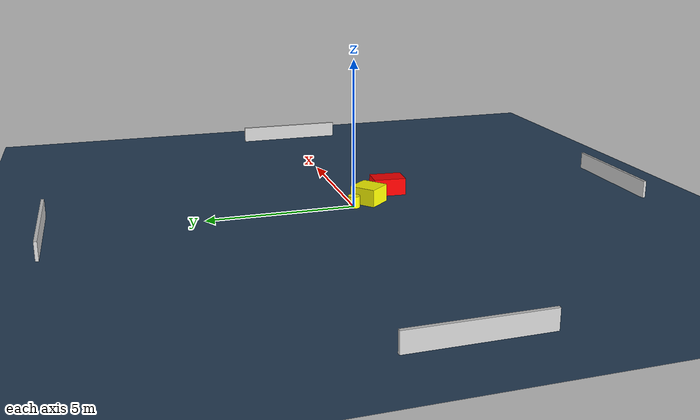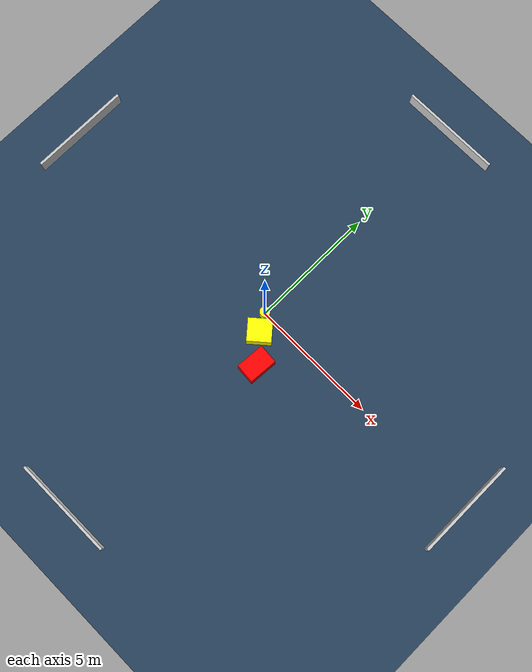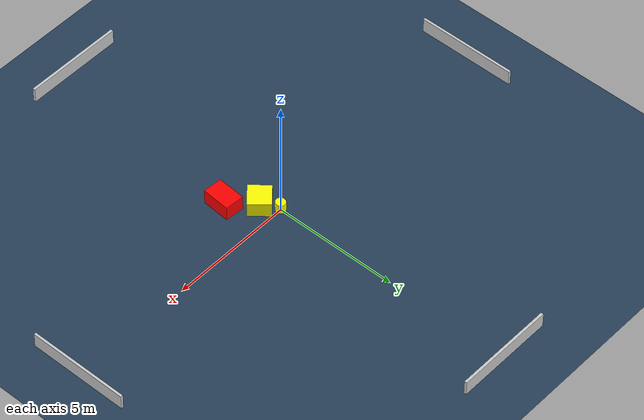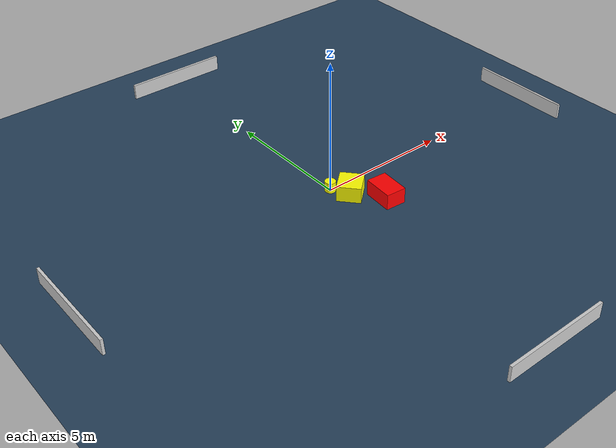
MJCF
<?xml version="1.0" ?>
<mujoco model="generated_environment">
  <option timestep="0.01" integrator="RK4" cone="elliptic"/>
  <default>
    <geom density="1"/>
  </default>
  <asset>
    <texture builtin="gradient" height="3072" name="skybox" rgb1="0.3 0.5 0.7" rgb2="0 0 0" type="skybox" width="512"/>
    <texture builtin="checker" height="300" name="groundplane" rgb1="0.2 0.3 0.4" rgb2="0.1 0.2 0.3" type="2d" width="300"/>
    <material name="groundplane" reflectance="0.2" texrepeat="5 5" texture="groundplane"/>
  </asset>
  <worldbody>
    <light dir="0 0 -1" directional="true" pos="0 0 1.5"/>
    <geom condim="3" friction="0.5 0.005 0.001" material="groundplane" name="floor" pos="0 0 0" size="0 0 0.05" type="plane"/>
    <body name="walls">
      <geom name="wall_1" condim="4" pos="-10.0 0.0 0.3" rgba="0.800000011920929 0.800000011920929 0.800000011920929 1.0" size="0.05 2.0 0.3" type="box"/>
      <geom name="wall_2" condim="4" pos="10.0 0.0 0.3" rgba="0.800000011920929 0.800000011920929 0.800000011920929 1.0" size="0.05 2.0 0.3" type="box"/>
      <geom name="wall_3" condim="4" pos="0.0 -10.0 0.3" rgba="0.800000011920929 0.800000011920929 0.800000011920929 1.0" size="2.0 0.05 0.3" type="box"/>
      <geom name="wall_4" condim="4" pos="0.0 10.0 0.3" rgba="0.800000011920929 0.800000011920929 0.800000011920929 1.0" size="2.0 0.05 0.3" type="box"/>
    </body>
    <body name="robot">
      <joint name="joint_x" type="slide" pos="0 0 0" axis="1 0 0"/>
      <joint name="joint_y" type="slide" pos="0 0 0" axis="0 1 0"/>
      <geom name="robot" type="cylinder" pos="0.0 0.0 0.2" size="0.2 0.2 0.0" mass="5.0" friction="1.0 0.005 0.0001" condim="4" rgba="1.0 1.0 0.0 1.0"/>
    </body>
    <body name="obstacle_1_movable">
      <geom name="obstacle_1_movable" condim="4" pos="0.3770438838232856 -0.6445108885768889 0.3" euler="0 0 131.01060574140584" friction="0.0 0.005 0.001" rgba="1.0 1.0 0.0 1.0" size="0.4395851969536673 0.4617878575499283 0.3" type="box" mass="0.1"/>
      <joint type="free"/>
    </body>
    <body name="obstacle_2_static">
      <geom name="obstacle_2_static" condim="4" pos="1.177566580195434 -1.5969416273126733 0.3" euler="0 0 355.65778870895286" friction="0.0 0.005 0.001" rgba="1.0 0.0 0.0 1.0" size="0.38266927906808923 0.5659489255664217 0.3" type="box"/>
    </body>
  </worldbody>
  <actuator>
    <motor name="actuator_x" joint="joint_x" gear="1" ctrlrange="-1 1"/>
    <motor name="actuator_y" joint="joint_y" gear="1" ctrlrange="-1 1"/>
  </actuator>
</mujoco>
